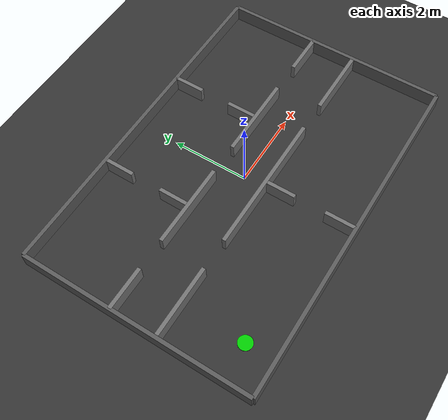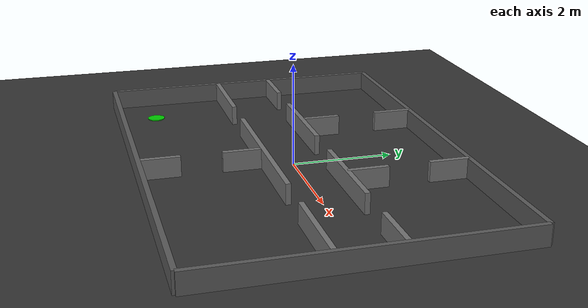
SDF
<?xml version="1.0" ?>
<sdf version="1.6">
  <world name="building_floor_world">

    <physics name="1ms" type="ignored">
      <max_step_size>0.001</max_step_size>
      <real_time_factor>1.0</real_time_factor>
      <real_time_update_rate>1000</real_time_update_rate>
    </physics>

    <gravity>0 0 -9.8</gravity>
    <magnetic_field>6e-06 2.3e-05 -4.2e-05</magnetic_field>
    <atmosphere type='adiabatic'/>

    <scene>
      <ambient>0.4 0.4 0.4 1</ambient>
      <background>0.7 0.7 0.7 1</background>
      <shadows>true</shadows>
    </scene>

    <light type="directional" name="sun">
      <cast_shadows>true</cast_shadows>
      <pose>0 0 10 0 0 0</pose>
      <diffuse>0.8 0.8 0.8 1</diffuse>
      <specular>0.2 0.2 0.2 1</specular>
      <direction>-0.5 0.1 -0.9</direction>
    </light>

    <model name="ground_plane">
      <static>true</static>
      <link name="link">
        <collision name="collision">
          <geometry><plane><normal>0 0 1</normal><size>20 20</size></plane></geometry>
          <surface><friction><ode/></friction></surface>
        </collision>
        <visual name="visual">
          <geometry><plane><normal>0 0 1</normal><size>20 20</size></plane></geometry>
          <material><ambient>0.2 0.2 0.2 1</ambient><diffuse>0.2 0.2 0.2 1</diffuse></material>
        </visual>
      </link>
    </model>

    <!-- Office-style floor plan. Footprint: 9 m (x) x 6 m (y). Walls: 0.1 m thick, 0.4 m tall. -->
    <!-- Central corridor (y in [-0.6, 0.6], 1.2 m wide) running east-west. -->
    <!-- Rooms: NW / N-mid / NE (north side), SW / SE (south side). -->
    <!-- Doorways are 0.8 m gaps in the walls. -->

    <!-- ===== Outer walls ===== -->
    <model name="outer_north"><static>true</static><link name="link"><pose>0 3.0 0.2 0 0 0</pose><collision name="collision"><geometry><box><size>9.0 0.1 0.4</size></box></geometry></collision><visual name="visual"><geometry><box><size>9.0 0.1 0.4</size></box></geometry><material><ambient>0.35 0.35 0.35 1</ambient><diffuse>0.35 0.35 0.35 1</diffuse></material></visual></link></model>
    <model name="outer_south"><static>true</static><link name="link"><pose>0 -3.0 0.2 0 0 0</pose><collision name="collision"><geometry><box><size>9.0 0.1 0.4</size></box></geometry></collision><visual name="visual"><geometry><box><size>9.0 0.1 0.4</size></box></geometry><material><ambient>0.35 0.35 0.35 1</ambient><diffuse>0.35 0.35 0.35 1</diffuse></material></visual></link></model>
    <model name="outer_east"><static>true</static><link name="link"><pose>4.5 0 0.2 0 0 0</pose><collision name="collision"><geometry><box><size>0.1 6.0 0.4</size></box></geometry></collision><visual name="visual"><geometry><box><size>0.1 6.0 0.4</size></box></geometry><material><ambient>0.35 0.35 0.35 1</ambient><diffuse>0.35 0.35 0.35 1</diffuse></material></visual></link></model>
    <model name="outer_west"><static>true</static><link name="link"><pose>-4.5 0 0.2 0 0 0</pose><collision name="collision"><geometry><box><size>0.1 6.0 0.4</size></box></geometry></collision><visual name="visual"><geometry><box><size>0.1 6.0 0.4</size></box></geometry><material><ambient>0.35 0.35 0.35 1</ambient><diffuse>0.35 0.35 0.35 1</diffuse></material></visual></link></model>

    <!-- ===== Corridor north wall (y = 0.6), doorways at x = -3.0, 0.0, 3.0 ===== -->
    <model name="cor_n_1"><static>true</static><link name="link"><pose>-3.95 0.6 0.2 0 0 0</pose><collision name="collision"><geometry><box><size>1.1 0.1 0.4</size></box></geometry></collision><visual name="visual"><geometry><box><size>1.1 0.1 0.4</size></box></geometry><material><ambient>0.45 0.45 0.45 1</ambient><diffuse>0.45 0.45 0.45 1</diffuse></material></visual></link></model>
    <model name="cor_n_2"><static>true</static><link name="link"><pose>-1.5 0.6 0.2 0 0 0</pose><collision name="collision"><geometry><box><size>2.2 0.1 0.4</size></box></geometry></collision><visual name="visual"><geometry><box><size>2.2 0.1 0.4</size></box></geometry><material><ambient>0.45 0.45 0.45 1</ambient><diffuse>0.45 0.45 0.45 1</diffuse></material></visual></link></model>
    <model name="cor_n_3"><static>true</static><link name="link"><pose>1.5 0.6 0.2 0 0 0</pose><collision name="collision"><geometry><box><size>2.2 0.1 0.4</size></box></geometry></collision><visual name="visual"><geometry><box><size>2.2 0.1 0.4</size></box></geometry><material><ambient>0.45 0.45 0.45 1</ambient><diffuse>0.45 0.45 0.45 1</diffuse></material></visual></link></model>
    <model name="cor_n_4"><static>true</static><link name="link"><pose>3.95 0.6 0.2 0 0 0</pose><collision name="collision"><geometry><box><size>1.1 0.1 0.4</size></box></geometry></collision><visual name="visual"><geometry><box><size>1.1 0.1 0.4</size></box></geometry><material><ambient>0.45 0.45 0.45 1</ambient><diffuse>0.45 0.45 0.45 1</diffuse></material></visual></link></model>

    <!-- ===== Corridor south wall (y = -0.6), doorways at x = -2.25, 2.25 ===== -->
    <model name="cor_s_1"><static>true</static><link name="link"><pose>-3.575 -0.6 0.2 0 0 0</pose><collision name="collision"><geometry><box><size>1.85 0.1 0.4</size></box></geometry></collision><visual name="visual"><geometry><box><size>1.85 0.1 0.4</size></box></geometry><material><ambient>0.45 0.45 0.45 1</ambient><diffuse>0.45 0.45 0.45 1</diffuse></material></visual></link></model>
    <model name="cor_s_2"><static>true</static><link name="link"><pose>0.0 -0.6 0.2 0 0 0</pose><collision name="collision"><geometry><box><size>3.7 0.1 0.4</size></box></geometry></collision><visual name="visual"><geometry><box><size>3.7 0.1 0.4</size></box></geometry><material><ambient>0.45 0.45 0.45 1</ambient><diffuse>0.45 0.45 0.45 1</diffuse></material></visual></link></model>
    <model name="cor_s_3"><static>true</static><link name="link"><pose>3.575 -0.6 0.2 0 0 0</pose><collision name="collision"><geometry><box><size>1.85 0.1 0.4</size></box></geometry></collision><visual name="visual"><geometry><box><size>1.85 0.1 0.4</size></box></geometry><material><ambient>0.45 0.45 0.45 1</ambient><diffuse>0.45 0.45 0.45 1</diffuse></material></visual></link></model>

    <!-- ===== North room dividers (x = -1.5 and x = 1.5), doorway at y = 1.8 ===== -->
    <model name="n_div_wm1_y1"><static>true</static><link name="link"><pose>-1.5 1.0 0.2 0 0 0</pose><collision name="collision"><geometry><box><size>0.1 0.8 0.4</size></box></geometry></collision><visual name="visual"><geometry><box><size>0.1 0.8 0.4</size></box></geometry><material><ambient>0.45 0.45 0.45 1</ambient><diffuse>0.45 0.45 0.45 1</diffuse></material></visual></link></model>
    <model name="n_div_wm1_y2"><static>true</static><link name="link"><pose>-1.5 2.6 0.2 0 0 0</pose><collision name="collision"><geometry><box><size>0.1 0.8 0.4</size></box></geometry></collision><visual name="visual"><geometry><box><size>0.1 0.8 0.4</size></box></geometry><material><ambient>0.45 0.45 0.45 1</ambient><diffuse>0.45 0.45 0.45 1</diffuse></material></visual></link></model>
    <model name="n_div_wp1_y1"><static>true</static><link name="link"><pose>1.5 1.0 0.2 0 0 0</pose><collision name="collision"><geometry><box><size>0.1 0.8 0.4</size></box></geometry></collision><visual name="visual"><geometry><box><size>0.1 0.8 0.4</size></box></geometry><material><ambient>0.45 0.45 0.45 1</ambient><diffuse>0.45 0.45 0.45 1</diffuse></material></visual></link></model>
    <model name="n_div_wp1_y2"><static>true</static><link name="link"><pose>1.5 2.6 0.2 0 0 0</pose><collision name="collision"><geometry><box><size>0.1 0.8 0.4</size></box></geometry></collision><visual name="visual"><geometry><box><size>0.1 0.8 0.4</size></box></geometry><material><ambient>0.45 0.45 0.45 1</ambient><diffuse>0.45 0.45 0.45 1</diffuse></material></visual></link></model>

    <!-- ===== South room divider (x = 0), doorway at y = -1.8 ===== -->
    <model name="s_div_x0_y1"><static>true</static><link name="link"><pose>0.0 -2.6 0.2 0 0 0</pose><collision name="collision"><geometry><box><size>0.1 0.8 0.4</size></box></geometry></collision><visual name="visual"><geometry><box><size>0.1 0.8 0.4</size></box></geometry><material><ambient>0.45 0.45 0.45 1</ambient><diffuse>0.45 0.45 0.45 1</diffuse></material></visual></link></model>
    <model name="s_div_x0_y2"><static>true</static><link name="link"><pose>0.0 -1.0 0.2 0 0 0</pose><collision name="collision"><geometry><box><size>0.1 0.8 0.4</size></box></geometry></collision><visual name="visual"><geometry><box><size>0.1 0.8 0.4</size></box></geometry><material><ambient>0.45 0.45 0.45 1</ambient><diffuse>0.45 0.45 0.45 1</diffuse></material></visual></link></model>

    <!-- ===== Goal marker (SW room) ===== -->
    <model name="goal_marker">
      <static>true</static>
      <link name="link">
        <pose>-3.5 -2.2 0.01 0 0 0</pose>
        <visual name="visual">
          <geometry><cylinder><radius>0.18</radius><length>0.02</length></cylinder></geometry>
          <material><ambient>0.0 0.8 0.0 1</ambient><diffuse>0.0 0.8 0.0 1</diffuse></material>
        </visual>
      </link>
    </model>

  </world>
</sdf>
